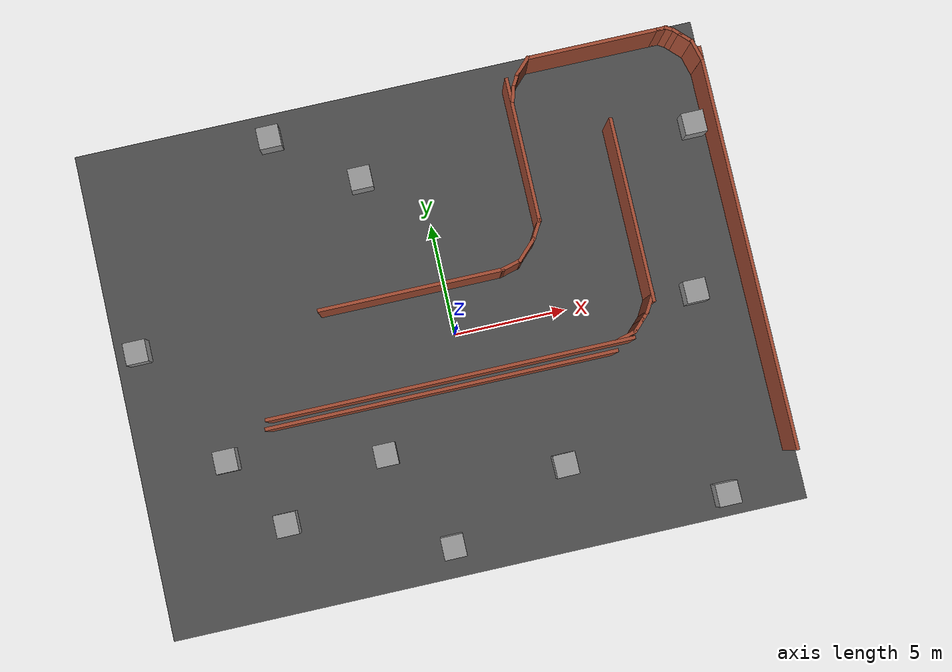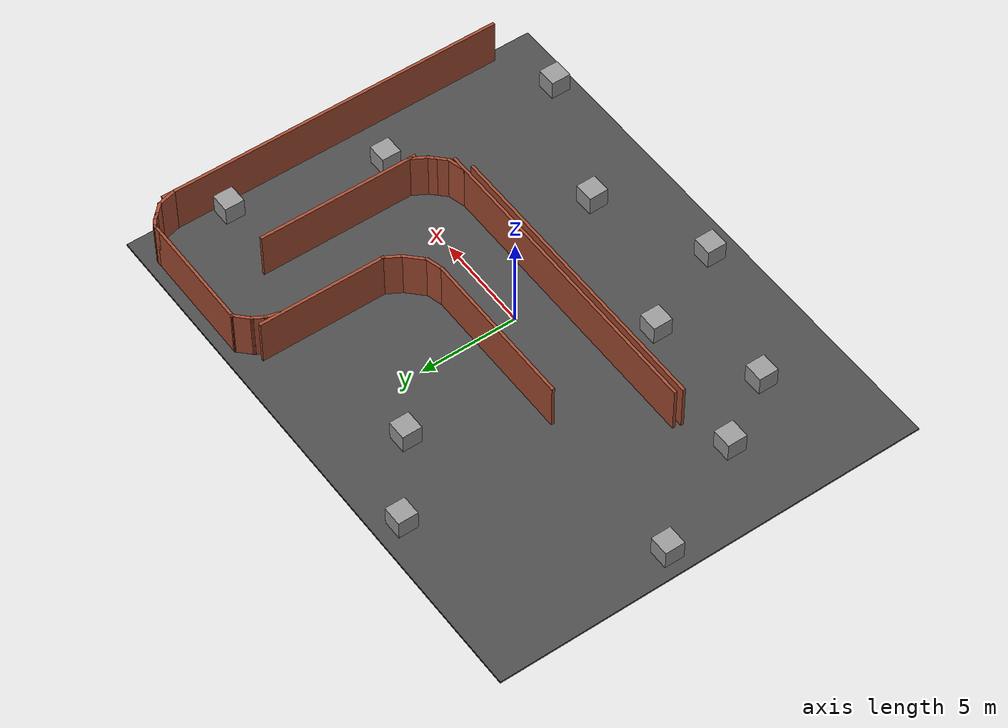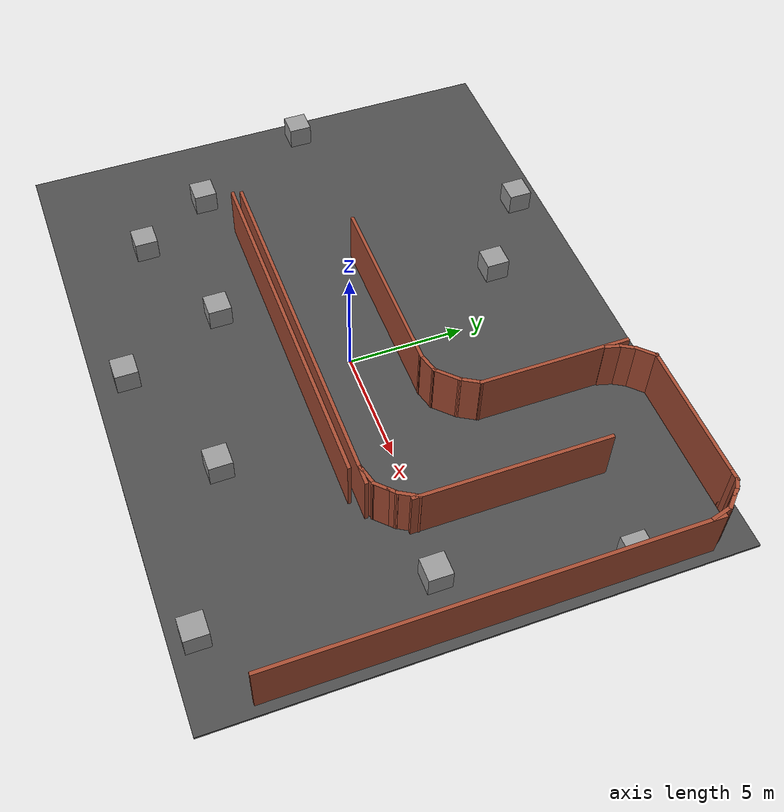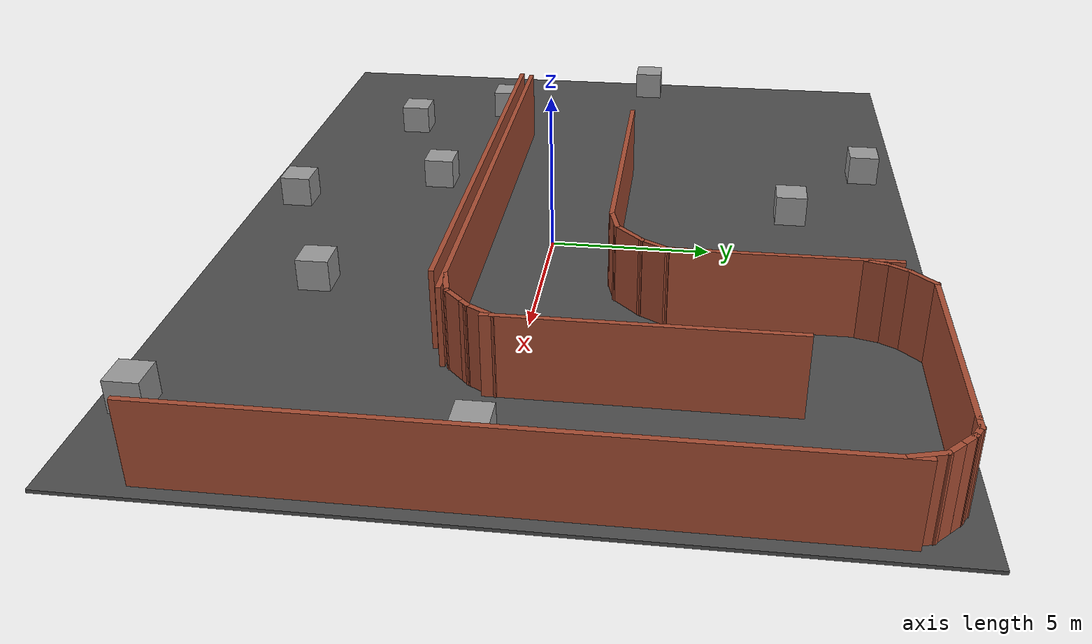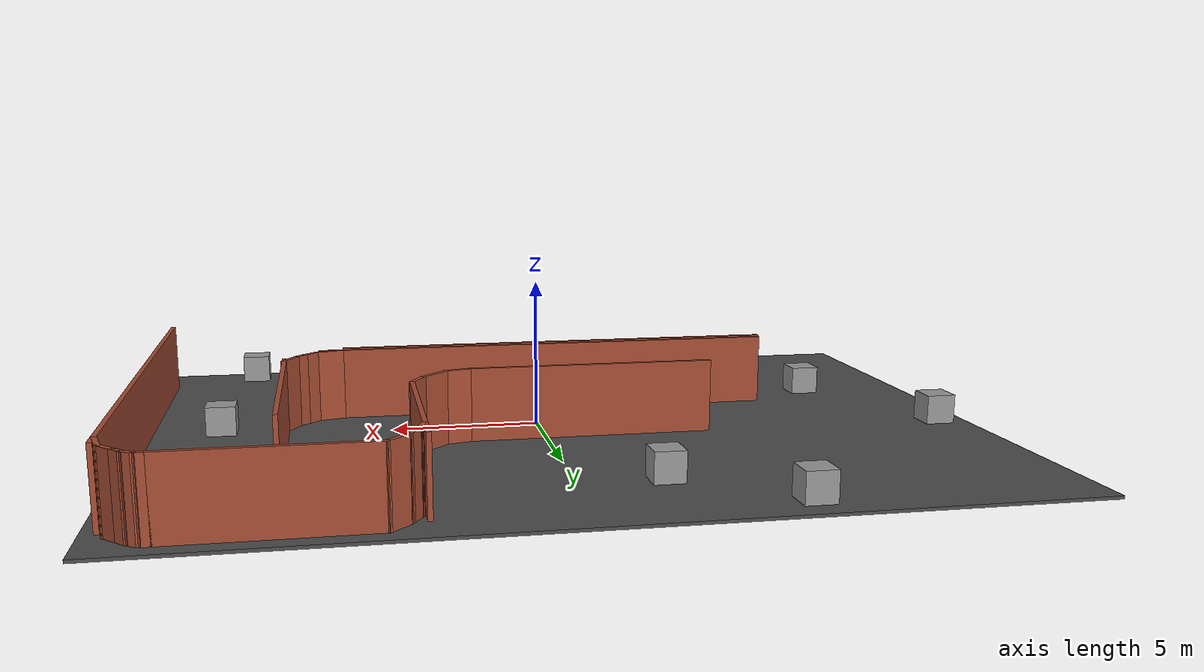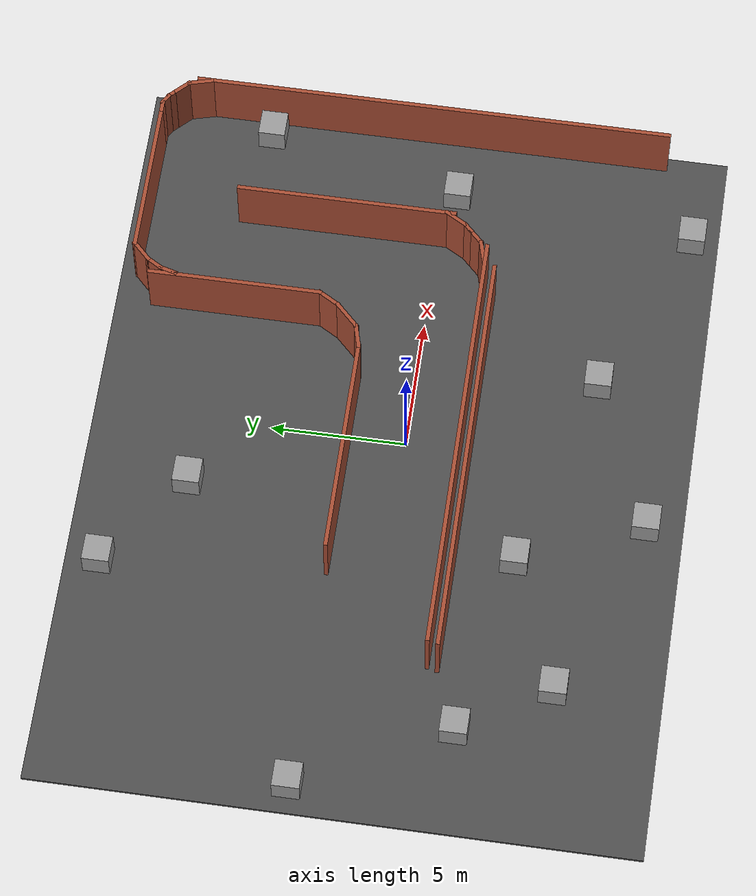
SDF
<sdf version="1.7">
 <world name="default">
  <light name="sun" type="directional">
   <pose>0 0 100 0 -0 0</pose>
   <diffuse>0.8 0.8 0.8 1</diffuse>
   <specular>0.1 0.1 0.1 1</specular>
   <attenuation>
    <range>1000</range>
    <constant>0.9</constant>
    <linear>0.01</linear>
    <quadratic>0.001</quadratic>
   </attenuation>
   <direction>-0.5 0.5 -1</direction>
   <spot><inner_angle>0</inner_angle><outer_angle>0</outer_angle><falloff>0</falloff></spot>
  </light>
  <gravity>0 0 -9.8</gravity>
  <magnetic_field>6e-06 2.3e-05 -4.2e-05</magnetic_field>
  <atmosphere type="adiabatic"/>
  <physics name="default_physics" default="0" type="ode">
   <max_step_size>0.001</max_step_size>
   <real_time_factor>1</real_time_factor>
   <real_time_update_rate>1000</real_time_update_rate>
  </physics>
  <scene><ambient>0.4 0.4 0.4 1</ambient><background>0.7 0.7 0.7 1</background><shadows>1</shadows></scene>
  <spherical_coordinates>
   <surface_model>EARTH_WGS84</surface_model>
   <latitude_deg>0</latitude_deg>
   <longitude_deg>0</longitude_deg>
   <elevation>0</elevation>
   <heading_deg>0</heading_deg>
  </spherical_coordinates>
  <model name="asphalt_plane">
   <static>1</static>
   <link name="link">
    <collision name="collision"><geometry><box><size>28.54 22.04 0.1</size></box></geometry></collision>
    <visual name="visual">
     <cast_shadows>0</cast_shadows>
     <geometry><box><size>28.54 22.04 0.1</size></box></geometry>
     <material>
      <script>
       <uri>model://asphalt_plane/materials/scripts</uri>
       <uri>model://asphalt_plane/materials/textures</uri>
       <name>vrc/asphalt</name>
      </script>
     </material>
    </visual>
   </link>
   <pose>-0.719505 0.551979 0 0 -0 0</pose>
  </model>
  <audio><device>default</device></audio>
  <model name="unit_box_clone">
   <pose>-9.02989 -6.55584 0.55 0 -0 3.9e-05</pose>
   <link name="link">
    <inertial>
     <mass>1</mass>
     <inertia>
      <ixx>0.166667</ixx>
      <ixy>0</ixy>
      <ixz>0</ixz>
      <iyy>0.166667</iyy>
      <iyz>0</iyz>
      <izz>0.166667</izz>
     </inertia>
    </inertial>
    <collision name="collision"><geometry><box><size>1 1 1</size></box></geometry></collision>
    <visual name="visual">
     <geometry><box><size>1 1 1</size></box></geometry>
     <material>
      <script><name>Gazebo/Grey</name><uri>file://media/materials/scripts/gazebo.material</uri></script>
     </material>
    </visual>
   </link>
  </model>
  <model name="unit_box_clone_0">
   <pose>-2.13903 -9.08249 0.55 0 -0 3.1e-05</pose>
   <link name="link">
    <inertial>
     <mass>1</mass>
     <inertia>
      <ixx>0.166667</ixx>
      <ixy>0</ixy>
      <ixz>0</ixz>
      <iyy>0.166667</iyy>
      <iyz>0</iyz>
      <izz>0.166667</izz>
     </inertia>
    </inertial>
    <collision name="collision"><geometry><box><size>1 1 1</size></box></geometry></collision>
    <visual name="visual">
     <geometry><box><size>1 1 1</size></box></geometry>
     <material>
      <script><name>Gazebo/Grey</name><uri>file://media/materials/scripts/gazebo.material</uri></script>
     </material>
    </visual>
   </link>
  </model>
  <model name="unit_box_clone_2">
   <pose>10.7422 -0.497048 0.55 0 -0 3.7e-05</pose>
   <link name="link">
    <inertial>
     <mass>1</mass>
     <inertia>
      <ixx>0.166667</ixx>
      <ixy>0</ixy>
      <ixz>0</ixz>
      <iyy>0.166667</iyy>
      <iyz>0</iyz>
      <izz>0.166667</izz>
     </inertia>
    </inertial>
    <collision name="collision"><geometry><box><size>1 1 1</size></box></geometry></collision>
    <visual name="visual">
     <geometry><box><size>1 1 1</size></box></geometry>
     <material>
      <script><name>Gazebo/Grey</name><uri>file://media/materials/scripts/gazebo.material</uri></script>
     </material>
    </visual>
   </link>
  </model>
  <model name="unit_box_clone_5">
   <pose>10.03 -9.45251 0.55 0 0 -0.00107</pose>
   <link name="link">
    <inertial>
     <mass>1</mass>
     <inertia>
      <ixx>0.166667</ixx>
      <ixy>0</ixy>
      <ixz>0</ixz>
      <iyy>0.166667</iyy>
      <iyz>0</iyz>
      <izz>0.166667</izz>
     </inertia>
    </inertial>
    <collision name="collision"><geometry><box><size>1 1 1</size></box></geometry></collision>
    <visual name="visual">
     <geometry><box><size>1 1 1</size></box></geometry>
     <material>
      <script><name>Gazebo/Grey</name><uri>file://media/materials/scripts/gazebo.material</uri></script>
     </material>
    </visual>
   </link>
  </model>
  <model name="unit_box_clone_9">
   <pose>12.4219 6.83819 0.55 0 -0 3.3e-05</pose>
   <link name="link">
    <inertial>
     <mass>1</mass>
     <inertia>
      <ixx>0.166667</ixx>
      <ixy>0</ixy>
      <ixz>0</ixz>
      <iyy>0.166667</iyy>
      <iyz>0</iyz>
      <izz>0.166667</izz>
     </inertia>
    </inertial>
    <collision name="collision"><geometry><box><size>1 1 1</size></box></geometry></collision>
    <visual name="visual">
     <geometry><box><size>1 1 1</size></box></geometry>
     <material>
      <script><name>Gazebo/Grey</name><uri>file://media/materials/scripts/gazebo.material</uri></script>
     </material>
    </visual>
   </link>
  </model>
  <model name="unit_box_clone_11">
   <pose>-2.61677 7.65172 0.55 0 -0 3.1e-05</pose>
   <link name="link">
    <inertial>
     <mass>1</mass>
     <inertia>
      <ixx>0.166667</ixx>
      <ixy>0</ixy>
      <ixz>0</ixz>
      <iyy>0.166667</iyy>
      <iyz>0</iyz>
      <izz>0.166667</izz>
     </inertia>
    </inertial>
    <collision name="collision"><geometry><box><size>1 1 1</size></box></geometry></collision>
    <visual name="visual">
     <geometry><box><size>1 1 1</size></box></geometry>
     <material>
      <script><name>Gazebo/Grey</name><uri>file://media/materials/scripts/gazebo.material</uri></script>
     </material>
    </visual>
   </link>
  </model>
  <model name="unit_box_clone_12">
   <pose>-6.20181 10.3429 0.55 0 -0 3.1e-05</pose>
   <link name="link">
    <inertial>
     <mass>1</mass>
     <inertia>
      <ixx>0.166667</ixx>
      <ixy>0</ixy>
      <ixz>0</ixz>
      <iyy>0.166667</iyy>
      <iyz>0</iyz>
      <izz>0.166667</izz>
     </inertia>
    </inertial>
    <collision name="collision"><geometry><box><size>1 1 1</size></box></geometry></collision>
    <visual name="visual">
     <geometry><box><size>1 1 1</size></box></geometry>
     <material>
      <script><name>Gazebo/Grey</name><uri>file://media/materials/scripts/gazebo.material</uri></script>
     </material>
    </visual>
   </link>
  </model>
  <model name="unit_box_clone_14">
   <pose>-13.9085 2.23419 0.55 0 -0 2e-05</pose>
   <link name="link">
    <inertial>
     <mass>1</mass>
     <inertia>
      <ixx>0.166667</ixx>
      <ixy>0</ixy>
      <ixz>0</ixz>
      <iyy>0.166667</iyy>
      <iyz>0</iyz>
      <izz>0.166667</izz>
     </inertia>
    </inertial>
    <collision name="collision"><geometry><box><size>1 1 1</size></box></geometry></collision>
    <visual name="visual">
     <geometry><box><size>1 1 1</size></box></geometry>
     <material>
      <script><name>Gazebo/Grey</name><uri>file://media/materials/scripts/gazebo.material</uri></script>
     </material>
    </visual>
   </link>
  </model>
  <model name="unit_box_clone_16">
   <pose>-11.0431 -3.28246 0.55 0 -0 2.5e-05</pose>
   <link name="link">
    <inertial>
     <mass>1</mass>
     <inertia>
      <ixx>0.166667</ixx>
      <ixy>0</ixy>
      <ixz>0</ixz>
      <iyy>0.166667</iyy>
      <iyz>0</iyz>
      <izz>0.166667</izz>
     </inertia>
    </inertial>
    <collision name="collision"><geometry><box><size>1 1 1</size></box></geometry></collision>
    <visual name="visual">
     <geometry><box><size>1 1 1</size></box></geometry>
     <material>
      <script><name>Gazebo/Grey</name><uri>file://media/materials/scripts/gazebo.material</uri></script>
     </material>
    </visual>
   </link>
  </model>
  <model name="unit_box_clone_clone">
   <pose>-4.15813 -4.55215 0.55 0 -0 3.6e-05</pose>
   <link name="link">
    <inertial>
     <mass>1</mass>
     <inertia>
      <ixx>0.166667</ixx>
      <ixy>0</ixy>
      <ixz>0</ixz>
      <iyy>0.166667</iyy>
      <iyz>0</iyz>
      <izz>0.166667</izz>
     </inertia>
    </inertial>
    <collision name="collision"><geometry><box><size>1 1 1</size></box></geometry></collision>
    <visual name="visual">
     <geometry><box><size>1 1 1</size></box></geometry>
     <material>
      <script><name>Gazebo/Grey</name><uri>file://media/materials/scripts/gazebo.material</uri></script>
     </material>
    </visual>
   </link>
  </model>
  <model name="unit_box_clone_clone_clone">
   <pose>3.42775 -6.6925 0.55 0 -0 0.009924</pose>
   <link name="link">
    <inertial>
     <mass>1</mass>
     <inertia>
      <ixx>0.166667</ixx>
      <ixy>0</ixy>
      <ixz>0</ixz>
      <iyy>0.166667</iyy>
      <iyz>0</iyz>
      <izz>0.166667</izz>
     </inertia>
    </inertial>
    <collision name="collision"><geometry><box><size>1 1 1</size></box></geometry></collision>
    <visual name="visual">
     <geometry><box><size>1 1 1</size></box></geometry>
     <material>
      <script><name>Gazebo/Grey</name><uri>file://media/materials/scripts/gazebo.material</uri></script>
     </material>
    </visual>
   </link>
  </model>
  <model name="Untitled_0">
   <pose>2.17229 1.41798 0 0 -0 0</pose>
   <link name="Wall_100">
    <collision name="Wall_100_Collision">
     <geometry><box><size>0.5 0.15 2.5</size></box></geometry>
     <pose>0 0 1.25 0 -0 0</pose>
    </collision>
    <visual name="Wall_100_Visual">
     <pose>0 0 1.25 0 -0 0</pose>
     <geometry><box><size>0.5 0.15 2.5</size></box></geometry>
     <material>
      <script><uri>file://media/materials/scripts/gazebo.material</uri><name>Gazebo/Bricks</name></script>
      <ambient>1 1 1 1</ambient>
     </material>
     <meta><layer>0</layer></meta>
    </visual>
    <pose>9.51531 9.51082 0 0 -0 0</pose>
   </link>
   <link name="Wall_101">
    <collision name="Wall_101_Collision">
     <geometry><box><size>0.5 0.15 2.5</size></box></geometry>
     <pose>0 0 1.25 0 -0 0</pose>
    </collision>
    <visual name="Wall_101_Visual">
     <pose>0 0 1.25 0 -0 0</pose>
     <geometry><box><size>0.5 0.15 2.5</size></box></geometry>
     <material>
      <script><uri>file://media/materials/scripts/gazebo.material</uri><name>Gazebo/Bricks</name></script>
      <ambient>1 1 1 1</ambient>
     </material>
     <meta><layer>0</layer></meta>
    </visual>
    <pose>9.84186 9.42332 0 0 -0 -0.523599</pose>
   </link>
   <link name="Wall_102">
    <collision name="Wall_102_Collision">
     <geometry><box><size>0.5 0.15 2.5</size></box></geometry>
     <pose>0 0 1.25 0 -0 0</pose>
    </collision>
    <visual name="Wall_102_Visual">
     <pose>0 0 1.25 0 -0 0</pose>
     <geometry><box><size>0.5 0.15 2.5</size></box></geometry>
     <material>
      <script><uri>file://media/materials/scripts/gazebo.material</uri><name>Gazebo/Bricks</name></script>
      <ambient>1 1 1 1</ambient>
     </material>
     <meta><layer>0</layer></meta>
    </visual>
    <pose>10.1172 9.21208 0 0 -0 -0.785398</pose>
   </link>
   <link name="Wall_103">
    <collision name="Wall_103_Collision">
     <geometry><box><size>0.75 0.15 2.5</size></box></geometry>
     <pose>0 0 1.25 0 -0 0</pose>
    </collision>
    <visual name="Wall_103_Visual">
     <pose>0 0 1.25 0 -0 0</pose>
     <geometry><box><size>0.75 0.15 2.5</size></box></geometry>
     <material>
      <script><uri>file://media/materials/scripts/gazebo.material</uri><name>Gazebo/Bricks</name></script>
      <ambient>1 1 1 1</ambient>
     </material>
     <meta><layer>0</layer></meta>
    </visual>
    <pose>10.453 8.8762 0 0 -0 -0.785398</pose>
   </link>
   <link name="Wall_104">
    <collision name="Wall_104_Collision">
     <geometry><box><size>1 0.15 2.5</size></box></geometry>
     <pose>0 0 1.25 0 -0 0</pose>
    </collision>
    <visual name="Wall_104_Visual">
     <pose>0 0 1.25 0 -0 0</pose>
     <geometry><box><size>1 0.15 2.5</size></box></geometry>
     <material>
      <script><uri>file://media/materials/scripts/gazebo.material</uri><name>Gazebo/Bricks</name></script>
      <ambient>1 1 1 1</ambient>
     </material>
     <meta><layer>0</layer></meta>
    </visual>
    <pose>10.7752 8.25355 0 0 -0 -1.309</pose>
   </link>
   <link name="Wall_73">
    <collision name="Wall_73_Collision">
     <geometry><box><size>16.25 0.15 2.5</size></box></geometry>
     <pose>0 0 1.25 0 -0 0</pose>
    </collision>
    <visual name="Wall_73_Visual">
     <pose>0 0 1.25 0 -0 0</pose>
     <geometry><box><size>16.25 0.15 2.5</size></box></geometry>
     <material>
      <script><uri>file://media/materials/scripts/gazebo.material</uri><name>Gazebo/Bricks</name></script>
      <ambient>1 1 1 1</ambient>
     </material>
     <meta><layer>0</layer></meta>
    </visual>
    <pose>-2.86052 -3.41043 0 0 -0 0</pose>
   </link>
   <link name="Wall_76">
    <collision name="Wall_76_Collision">
     <geometry><box><size>8.25 0.15 2.5</size></box></geometry>
     <pose>0 0 1.25 0 -0 0</pose>
    </collision>
    <visual name="Wall_76_Visual">
     <pose>0 0 1.25 0 -0 0</pose>
     <geometry><box><size>8.25 0.15 2.5</size></box></geometry>
     <material>
      <script><uri>file://media/materials/scripts/gazebo.material</uri><name>Gazebo/Bricks</name></script>
      <ambient>1 1 1 1</ambient>
     </material>
     <meta><layer>0</layer></meta>
    </visual>
    <pose>-3.69073 0.69136 0 0 -0 0</pose>
   </link>
   <link name="Wall_78">
    <collision name="Wall_78_Collision">
     <geometry><box><size>1 0.15 2.5</size></box></geometry>
     <pose>0 0 1.25 0 -0 0</pose>
    </collision>
    <visual name="Wall_78_Visual">
     <pose>0 0 1.25 0 -0 0</pose>
     <geometry><box><size>1 0.15 2.5</size></box></geometry>
     <material>
      <script><uri>file://media/materials/scripts/gazebo.material</uri><name>Gazebo/Bricks</name></script>
      <ambient>1 1 1 1</ambient>
     </material>
     <meta><layer>0</layer></meta>
    </visual>
    <pose>0.769793 0.801358 0 0 -0 0.261799</pose>
   </link>
   <link name="Wall_79">
    <collision name="Wall_79_Collision">
     <geometry><box><size>1.25 0.15 2.5</size></box></geometry>
     <pose>0 0 1.25 0 -0 0</pose>
    </collision>
    <visual name="Wall_79_Visual">
     <pose>0 0 1.25 0 -0 0</pose>
     <geometry><box><size>1.25 0.15 2.5</size></box></geometry>
     <material>
      <script><uri>file://media/materials/scripts/gazebo.material</uri><name>Gazebo/Bricks</name></script>
      <ambient>1 1 1 1</ambient>
     </material>
     <meta><layer>0</layer></meta>
    </visual>
    <pose>1.56922 1.30027 0 0 -0 0.785398</pose>
   </link>
   <link name="Wall_80">
    <collision name="Wall_80_Collision">
     <geometry><box><size>1 0.15 2.5</size></box></geometry>
     <pose>0 0 1.25 0 -0 0</pose>
    </collision>
    <visual name="Wall_80_Visual">
     <pose>0 0 1.25 0 -0 0</pose>
     <geometry><box><size>1 0.15 2.5</size></box></geometry>
     <material>
      <script><uri>file://media/materials/scripts/gazebo.material</uri><name>Gazebo/Bricks</name></script>
      <ambient>1 1 1 1</ambient>
     </material>
     <meta><layer>0</layer></meta>
    </visual>
    <pose>2.17063 2.05723 0 0 -0 1.0472</pose>
   </link>
   <link name="Wall_81">
    <collision name="Wall_81_Collision">
     <geometry><box><size>6.5 0.15 2.5</size></box></geometry>
     <pose>0 0 1.25 0 -0 0</pose>
    </collision>
    <visual name="Wall_81_Visual">
     <pose>0 0 1.25 0 -0 0</pose>
     <geometry><box><size>6.5 0.15 2.5</size></box></geometry>
     <material>
      <script><uri>file://media/materials/scripts/gazebo.material</uri><name>Gazebo/Bricks</name></script>
      <ambient>1 1 1 1</ambient>
     </material>
     <meta><layer>0</layer></meta>
    </visual>
    <pose>2.38313 5.6003 0 0 -0 1.5708</pose>
   </link>
   <link name="Wall_83">
    <collision name="Wall_83_Collision">
     <geometry><box><size>8.25 0.15 2.5</size></box></geometry>
     <pose>0 0 1.25 0 -0 0</pose>
    </collision>
    <visual name="Wall_83_Visual">
     <pose>0 0 1.25 0 -0 0</pose>
     <geometry><box><size>8.25 0.15 2.5</size></box></geometry>
     <material>
      <script><uri>file://media/materials/scripts/gazebo.material</uri><name>Gazebo/Bricks</name></script>
      <ambient>1 1 1 1</ambient>
     </material>
     <meta><layer>0</layer></meta>
    </visual>
    <pose>6.40756 2.01956 0 0 -0 -1.5708</pose>
   </link>
   <link name="Wall_87">
    <collision name="Wall_87_Collision">
     <geometry><box><size>1 0.15 2.5</size></box></geometry>
     <pose>0 0 1.25 0 -0 0</pose>
    </collision>
    <visual name="Wall_87_Visual">
     <pose>0 0 1.25 0 -0 0</pose>
     <geometry><box><size>1 0.15 2.5</size></box></geometry>
     <material>
      <script><uri>file://media/materials/scripts/gazebo.material</uri><name>Gazebo/Bricks</name></script>
      <ambient>1 1 1 1</ambient>
     </material>
     <meta><layer>0</layer></meta>
    </visual>
    <pose>4.90949 -3.27284 0 0 -0 0.261799</pose>
   </link>
   <link name="Wall_88">
    <collision name="Wall_88_Collision">
     <geometry><box><size>0.75 0.15 2.5</size></box></geometry>
     <pose>0 0 1.25 0 -0 0</pose>
    </collision>
    <visual name="Wall_88_Visual">
     <pose>0 0 1.25 0 -0 0</pose>
     <geometry><box><size>0.75 0.15 2.5</size></box></geometry>
     <material>
      <script><uri>file://media/materials/scripts/gazebo.material</uri><name>Gazebo/Bricks</name></script>
      <ambient>1 1 1 1</ambient>
     </material>
     <meta><layer>0</layer></meta>
    </visual>
    <pose>5.53214 -2.95071 0 0 -0 0.785398</pose>
   </link>
   <link name="Wall_89">
    <collision name="Wall_89_Collision">
     <geometry><box><size>0.5 0.15 2.5</size></box></geometry>
     <pose>0 0 1.25 0 -0 0</pose>
    </collision>
    <visual name="Wall_89_Visual">
     <pose>0 0 1.25 0 -0 0</pose>
     <geometry><box><size>0.5 0.15 2.5</size></box></geometry>
     <material>
      <script><uri>file://media/materials/scripts/gazebo.material</uri><name>Gazebo/Bricks</name></script>
      <ambient>1 1 1 1</ambient>
     </material>
     <meta><layer>0</layer></meta>
    </visual>
    <pose>5.86801 -2.61483 0 0 -0 0.785398</pose>
   </link>
   <link name="Wall_90">
    <collision name="Wall_90_Collision">
     <geometry><box><size>1 0.15 2.5</size></box></geometry>
     <pose>0 0 1.25 0 -0 0</pose>
    </collision>
    <visual name="Wall_90_Visual">
     <pose>0 0 1.25 0 -0 0</pose>
     <geometry><box><size>1 0.15 2.5</size></box></geometry>
     <material>
      <script><uri>file://media/materials/scripts/gazebo.material</uri><name>Gazebo/Bricks</name></script>
      <ambient>1 1 1 1</ambient>
     </material>
     <meta><layer>0</layer></meta>
    </visual>
    <pose>6.20426 -2.12303 0 0 -0 1.0472</pose>
   </link>
   <link name="Wall_92">
    <collision name="Wall_92_Collision">
     <geometry><box><size>18 0.15 2.5</size></box></geometry>
     <pose>0 0 1.2495 0 -0 0</pose>
    </collision>
    <visual name="Wall_92_Visual">
     <pose>0 0 1.2495 0 -0 0</pose>
     <geometry><box><size>18 0.15 2.5</size></box></geometry>
     <material>
      <script><uri>file://media/materials/scripts/gazebo.material</uri><name>Gazebo/Bricks</name></script>
      <ambient>1 1 1 1</ambient>
     </material>
     <meta><layer>0</layer></meta>
    </visual>
    <pose>10.9105 -0.616886 0 0 -0 -1.5708</pose>
   </link>
   <link name="Wall_95">
    <collision name="Wall_95_Collision">
     <geometry><box><size>0.75 0.15 2.5</size></box></geometry>
     <pose>0 0 1.25 0 -0 0</pose>
    </collision>
    <visual name="Wall_95_Visual">
     <pose>0 0 1.25 0 -0 0</pose>
     <geometry><box><size>0.75 0.15 2.5</size></box></geometry>
     <material>
      <script><uri>file://media/materials/scripts/gazebo.material</uri><name>Gazebo/Bricks</name></script>
      <ambient>1 1 1 1</ambient>
     </material>
     <meta><layer>0</layer></meta>
    </visual>
    <pose>2.51162 8.10039 0 0 -0 1.309</pose>
   </link>
   <link name="Wall_96">
    <collision name="Wall_96_Collision">
     <geometry><box><size>0.75 0.15 2.5</size></box></geometry>
     <pose>0 0 1.25 0 -0 0</pose>
    </collision>
    <visual name="Wall_96_Visual">
     <pose>0 0 1.25 0 -0 0</pose>
     <geometry><box><size>0.75 0.15 2.5</size></box></geometry>
     <material>
      <script><uri>file://media/materials/scripts/gazebo.material</uri><name>Gazebo/Bricks</name></script>
      <ambient>1 1 1 1</ambient>
     </material>
     <meta><layer>0</layer></meta>
    </visual>
    <pose>2.73927 8.64997 0 0 -0 1.0472</pose>
   </link>
   <link name="Wall_98">
    <collision name="Wall_98_Collision">
     <geometry><box><size>1 0.15 2.5</size></box></geometry>
     <pose>0 0 1.25 0 -0 0</pose>
    </collision>
    <visual name="Wall_98_Visual">
     <pose>0 0 1.25 0 -0 0</pose>
     <geometry><box><size>1 0.15 2.5</size></box></geometry>
     <material>
      <script><uri>file://media/materials/scripts/gazebo.material</uri><name>Gazebo/Bricks</name></script>
      <ambient>1 1 1 1</ambient>
     </material>
     <meta><layer>0</layer></meta>
    </visual>
    <pose>3.18979 9.2103 0 0 -0 0.785398</pose>
   </link>
   <link name="Wall_99">
    <collision name="Wall_99_Collision">
     <geometry><box><size>6 0.15 2.5</size></box></geometry>
     <pose>0 0 1.25 0 -0 0</pose>
    </collision>
    <visual name="Wall_99_Visual">
     <pose>0 0 1.25 0 -0 0</pose>
     <geometry><box><size>6 0.15 2.5</size></box></geometry>
     <material>
      <script><uri>file://media/materials/scripts/gazebo.material</uri><name>Gazebo/Bricks</name></script>
      <ambient>1 1 1 1</ambient>
     </material>
     <meta><layer>0</layer></meta>
    </visual>
    <pose>6.41531 9.51082 0 0 -0 0</pose>
   </link>
   <static>1</static>
  </model>
  <model name="Untitled">
   <pose>-1.155 -1.2225 0 0 -0 0</pose>
   <link name="Wall_0">
    <collision name="Wall_0_Collision">
     <geometry><box><size>15.5 0.15 2.5</size></box></geometry>
     <pose>0 0 1.25 0 -0 0</pose>
    </collision>
    <visual name="Wall_0_Visual">
     <pose>0 0 1.25 0 -0 0</pose>
     <geometry><box><size>15.5 0.15 2.5</size></box></geometry>
     <material>
      <script><uri>file://media/materials/scripts/gazebo.material</uri><name>Gazebo/Bricks</name></script>
      <ambient>1 1 1 1</ambient>
     </material>
     <meta><layer>0</layer></meta>
    </visual>
    <pose>-0 -1.1475 0 0 -0 0</pose>
   </link>
   <static>1</static>
  </model>
 </world>
</sdf>
